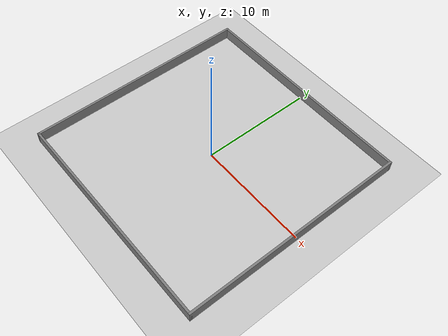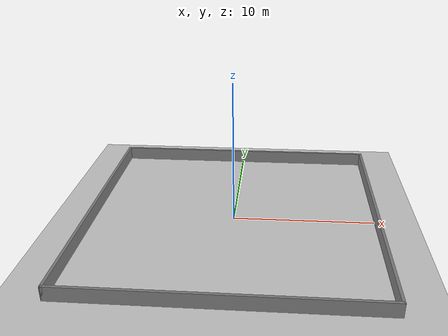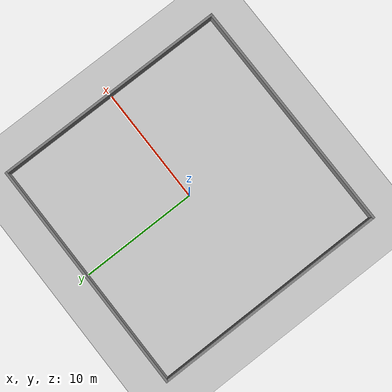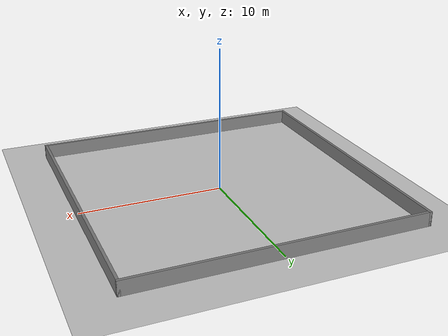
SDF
<?xml version="1.0"?>
<sdf version="1.9">
  <world name="default">
    <physics name="default_physics" default="0" type="ode">
      <max_step_size>0.003</max_step_size>
      <real_time_factor>1</real_time_factor>
      <real_time_update_rate>333.333</real_time_update_rate>
    </physics>
    <plugin filename="gz-sim-physics-system" name="gz::sim::systems::Physics"/>
    <plugin filename="gz-sim-user-commands-system" name="gz::sim::systems::UserCommands"/>
    <plugin filename="gz-sim-scene-broadcaster-system" name="gz::sim::systems::SceneBroadcaster"/>
    <plugin filename="gz-sim-sensors-system" name="gz::sim::systems::Sensors">
      <render_engine>ogre2</render_engine>
    </plugin>
    <light name="sun" type="directional">
      <cast_shadows>true</cast_shadows>
      <pose>0 0 10 0 0 0</pose>
      <diffuse>0.8 0.8 0.8 1</diffuse>
      <specular>0.2 0.2 0.2 1</specular>
      <direction>-0.5 0.1 -0.9</direction>
    </light>
    <model name="ground_plane">
      <static>true</static>
      <link name="link">
        <collision name="collision"><geometry><plane><normal>0 0 1</normal><size>20 20</size></plane></geometry></collision>
        <visual name="visual"><geometry><plane><normal>0 0 1</normal><size>20 20</size></plane></geometry>
          <material><ambient>0.8 0.8 0.8 1</ambient><diffuse>0.8 0.8 0.8 1</diffuse></material>
        </visual>
      </link>
    </model>
    <model name="wall_north">
      <static>true</static>
      <pose>0 10.1 0.5 0 0 0</pose>
      <link name="link">
        <collision name="collision"><geometry><box><size>20.4 0.2 1.0</size></box></geometry></collision>
        <visual name="visual"><geometry><box><size>20.4 0.2 1.0</size></box></geometry>
          <material><ambient>0.5 0.5 0.5 1</ambient><diffuse>0.5 0.5 0.5 1</diffuse></material>
        </visual>
      </link>
    </model>
    <model name="wall_south">
      <static>true</static>
      <pose>0 -10.1 0.5 0 0 0</pose>
      <link name="link">
        <collision name="collision"><geometry><box><size>20.4 0.2 1.0</size></box></geometry></collision>
        <visual name="visual"><geometry><box><size>20.4 0.2 1.0</size></box></geometry>
          <material><ambient>0.5 0.5 0.5 1</ambient><diffuse>0.5 0.5 0.5 1</diffuse></material>
        </visual>
      </link>
    </model>
    <model name="wall_east">
      <static>true</static>
      <pose>10.1 0 0.5 0 0 0</pose>
      <link name="link">
        <collision name="collision"><geometry><box><size>0.2 20.4 1.0</size></box></geometry></collision>
        <visual name="visual"><geometry><box><size>0.2 20.4 1.0</size></box></geometry>
          <material><ambient>0.5 0.5 0.5 1</ambient><diffuse>0.5 0.5 0.5 1</diffuse></material>
        </visual>
      </link>
    </model>
    <model name="wall_west">
      <static>true</static>
      <pose>-10.1 0 0.5 0 0 0</pose>
      <link name="link">
        <collision name="collision"><geometry><box><size>0.2 20.4 1.0</size></box></geometry></collision>
        <visual name="visual"><geometry><box><size>0.2 20.4 1.0</size></box></geometry>
          <material><ambient>0.5 0.5 0.5 1</ambient><diffuse>0.5 0.5 0.5 1</diffuse></material>
        </visual>
      </link>
    </model>
  </world>
</sdf>
